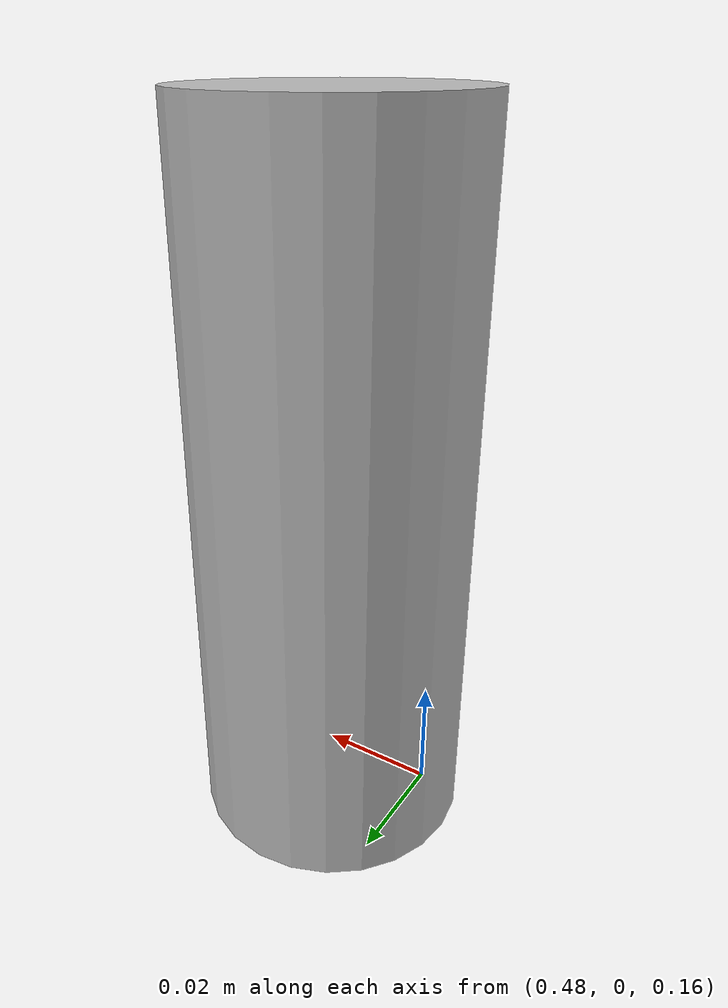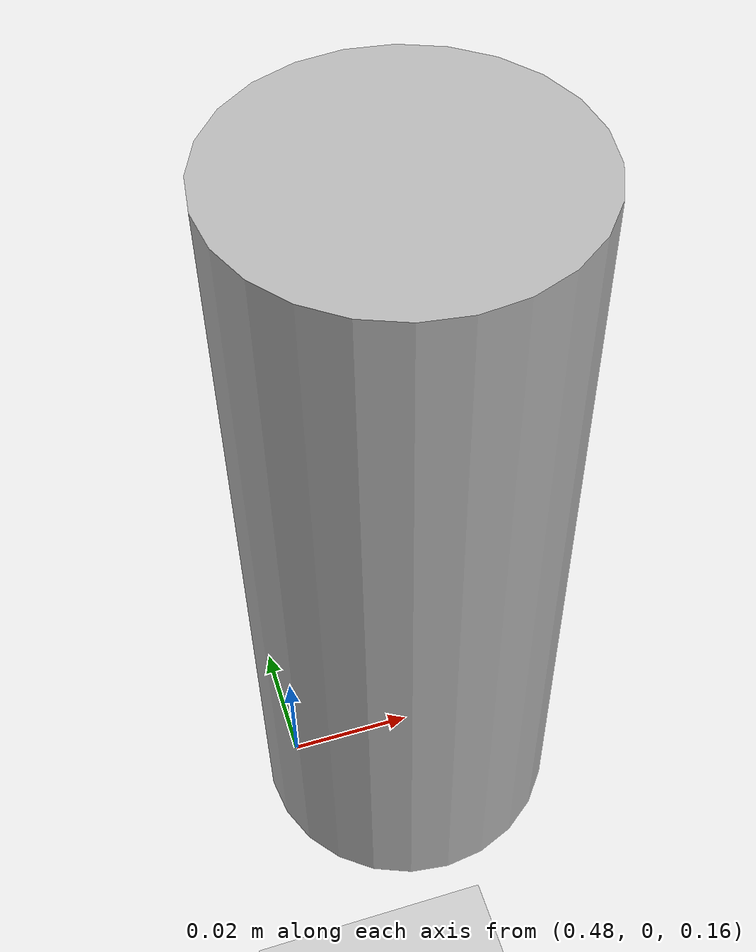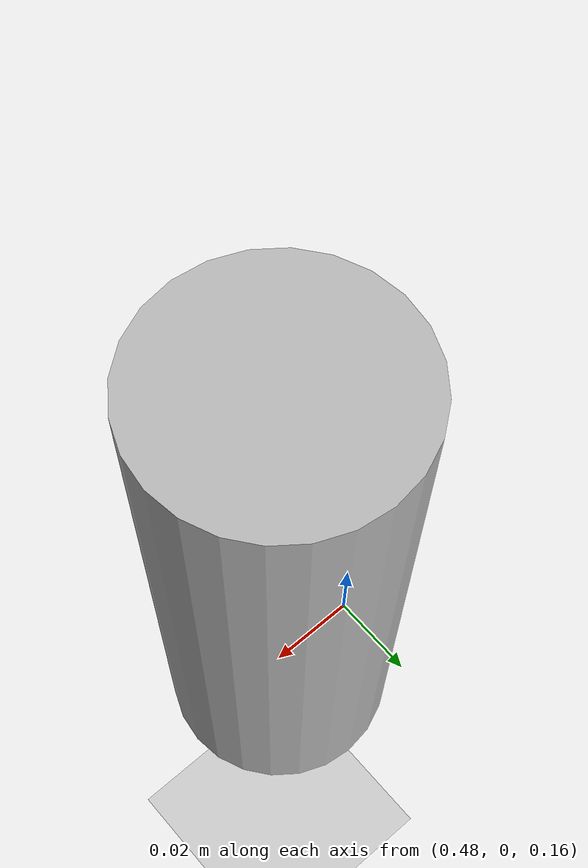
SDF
<sdf version="1.4">
  <world name="default">
    <!-- A global light source -->
    <include>
      <uri>model://sun</uri>
    </include>

    <!-- A ground plane -->
    <include>
      <uri>model://ground_plane</uri>
    </include>

    <physics type="ode">
      <real_time_update_rate>1000.0</real_time_update_rate>
      <max_step_size>0.001</max_step_size>
      <real_time_factor>1</real_time_factor>
      <ode>
        <solver>
          <type>quick</type>
          <iters>150</iters>
          <precon_iters>0</precon_iters>
          <sor>1.400000</sor>
          <use_dynamic_moi_rescaling>1</use_dynamic_moi_rescaling>
        </solver>
        <constraints>
          <cfm>0.00001</cfm>
          <erp>0.2</erp>
          <contact_max_correcting_vel>2000.000000</contact_max_correcting_vel>
          <contact_surface_layer>0.01000</contact_surface_layer>
        </constraints>
      </ode>
    </physics>

    <scene>
      <ambient>0.4 0.4 0.4 1</ambient>
      <background>0.7 0.7 0.7 1</background>
      <shadows>true</shadows>
    </scene>

    <gui fullscreen='0'>
      <camera name='user_camera'>
        <pose> 2.0 -2.0 1.2 0.0 0.275643 2.356190 </pose>
        <view_controller>orbit</view_controller>
      </camera>
    </gui>

    <light name='user_directional_light_0' type='directional'>
      <pose frame=''>-1.161098 -0.156670 0.829320 0.058595 -1.295085 0.040307</pose>
      <diffuse>0.5 0.5 0.5 1</diffuse>
      <specular>0.1 0.1 0.1 1</specular>
      <direction>0.1 0.1 -0.9</direction>
      <attenuation>
        <range>20</range>
        <constant>0.5</constant>
        <linear>0.01</linear>
        <quadratic>0.001</quadratic>
      </attenuation>
      <cast_shadows>1</cast_shadows>
    </light>

    <include>
      <pose frame=''>0.5 0 0.15 0 0 0</pose>
      <uri>model://pick_object/beer</uri>
      <static>1</static>
    </include>

  </world>
</sdf>

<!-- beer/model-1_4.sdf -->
<sdf version='1.6'>
  <model name='object0'>
    <link name='link_0'>
      <pose frame=''>0 0 0.065 0 0 0</pose>
      <inertial>
        <mass>0.010</mass>
        <inertia>
          <ixx>4.7583e-005</ixx>
          <ixy>0</ixy>
          <ixz>0</ixz>
          <iyy>4.7583e-005</iyy>
          <iyz>0</iyz>
          <izz>3.1250e-006</izz>
        </inertia>
      </inertial>
      <gravity>1</gravity>
      <self_collide>0</self_collide>
      <kinematic>0</kinematic>
      <visual name='visual'>
        <pose frame=''>0 0 0 0 -0 0</pose>
        <geometry>
          <cylinder>
            <radius>0.025000</radius>
            <length>0.130000</length>
          </cylinder>
        </geometry>
        <material>
          <script>
            <uri>model://beer/materials/scripts</uri>
            <uri>model://beer/materials/textures</uri>
            <name>Beer/Diffuse</name>
          </script>
        </material>
        <cast_shadows>1</cast_shadows>
        <transparency>0</transparency>
      </visual>
      <collision name='collision'>
        <laser_retro>0</laser_retro>
        <max_contacts>10</max_contacts>
        <pose frame=''>0 0 0 0 -0 0</pose>
        <geometry>
          <cylinder>
            <radius>0.025000</radius>
            <length>0.130000</length>
          </cylinder>
        </geometry>
        <surface>
          <friction>
            <ode>
              <mu>1000000.0</mu>
              <mu2>10000.0</mu2>
            </ode>
          </friction>
          <contact>
            <ode>
              <kp>1000000.0</kp>
              <kd>100.0</kd>
              <max_vel>1.0</max_vel>
              <min_depth>0.002</min_depth>
            </ode>
          </contact>
        </surface>
      </collision>
    </link>
    <static>0</static>
    <allow_auto_disable>1</allow_auto_disable>
  </model>
</sdf>
